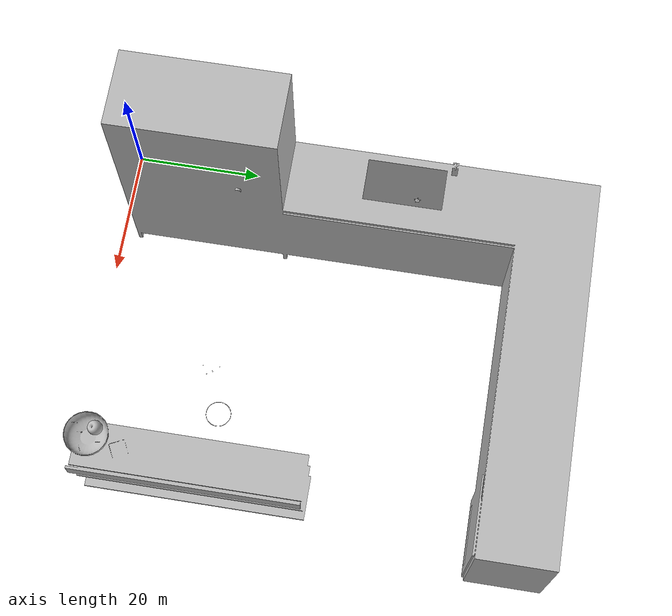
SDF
<?xml version='1.0' encoding='utf-8'?>
<sdf version="1.7">

  <world name="default">

    <!-- A gazebo links attacher -->
    <plugin name="ros_link_attacher_plugin" filename="libgazebo_ros_link_attacher.so"/>

    <gravity>0 0 -9.8</gravity>

    <physics default="0" name="default_physics" type="ode">
      <max_step_size>0.001</max_step_size>
      <real_time_factor>1</real_time_factor>
      <real_time_update_rate>1000</real_time_update_rate>
    </physics>

    <scene>
      <shadows>0</shadows>
      <grid>false</grid>
      <origin_visual>false</origin_visual>
    </scene>

    <model name="Kitchen">
        <include>
            <uri>model://Kitchen</uri>
        </include>
        <scale>0.5 0.5 0.5</scale>
        <pose frame="">-1.18489 -2.40174 0 0 -0 0</pose>
	  </model>

    <gui fullscreen='0'>
      <camera name='user_camera'>
        <pose frame=''>-2.75 4.19 5.15 0.0 0.72 -0.99</pose>
        <view_controller>orbit</view_controller>
        <projection_type>perspective</projection_type>
      </camera>
    </gui>
  </world>
</sdf>

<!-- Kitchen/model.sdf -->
<sdf version="1.6">
  <model name="kitchen">
    <static>false</static>
    <link name="kitchen">
      <collision name="kitchen_collision">
        <geometry>
          <mesh>
            <uri>model://Kitchen/meshes/model.dae</uri>
            <scale>0.5 0.5 0.5</scale>
          </mesh>
        </geometry>
      </collision>
      <visual name="visual">
        <geometry>
            <mesh>
                <uri>model://Kitchen/meshes/model.dae</uri>
                <scale>0.5 0.5 0.5</scale>
            </mesh>
        </geometry>
      </visual>
    </link>
  </model>
</sdf>
